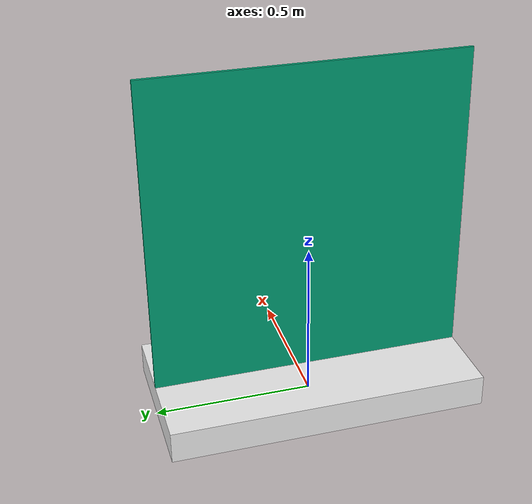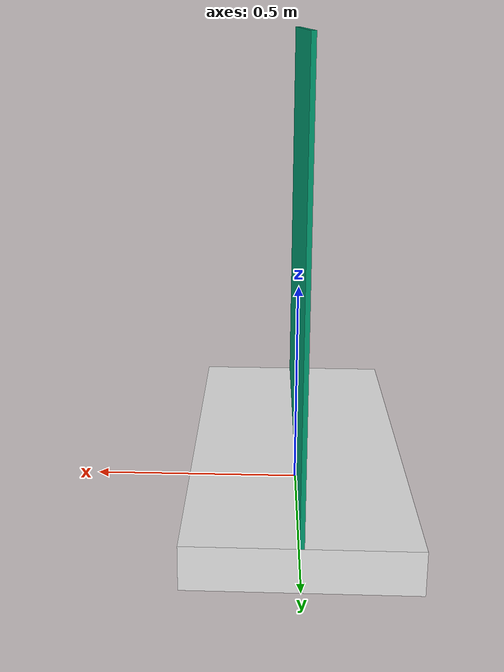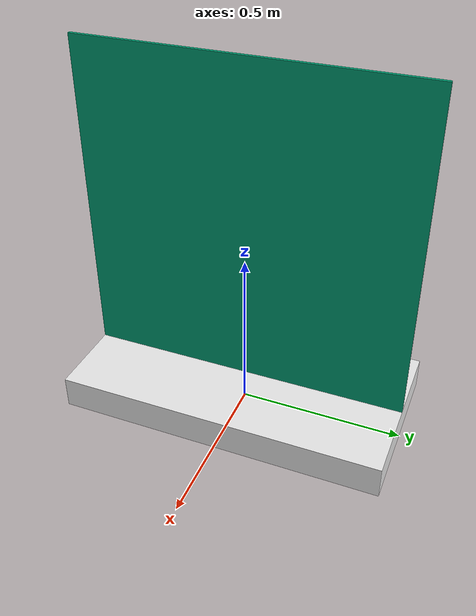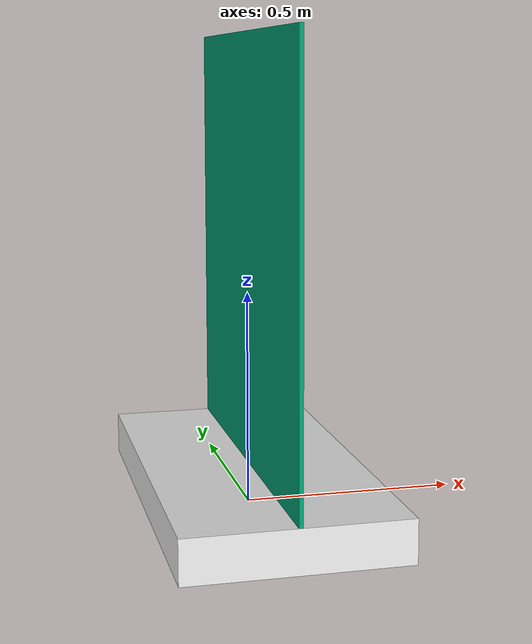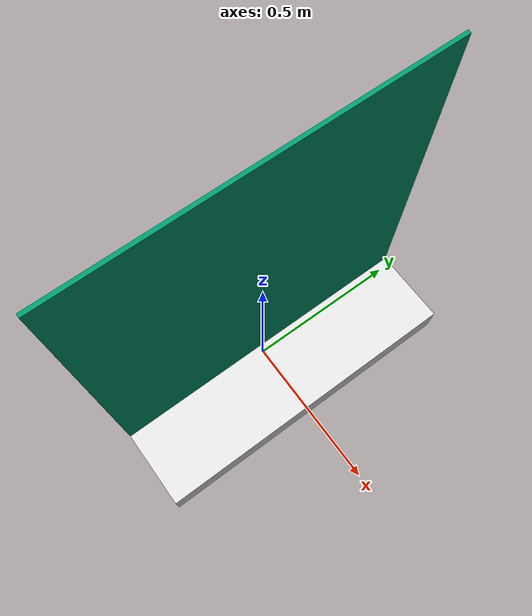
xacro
<?xml version="1.0"?>
<robot name="marker_board" xmlns:xacro="http://www.ros.org/wiki/xacro">

    <macro name="box_inertia" params="m x y z">
      <inertia  ixx="${m*(y*y+z*z)/12}" ixy = "0" ixz = "0"
                iyy="${m*(x*x+z*z)/12}" iyz = "0"
                izz="${m*(x*x+z*z)/12}" />
    </macro>

    <link name="base_link" />

    <joint name="base_joint" type="fixed">
      <origin xyz="0 0 0" rpy="0 0 0" />
      <parent link="base_link" />
      <child link="board_base" />
    </joint>

    <link name="board_base">
      <collision>
        <origin xyz="0 0 0.05" rpy="0 0 0"/>
        <geometry>
          <box size="0.5 1 0.1" />
        </geometry>
      </collision>
      <visual>
        <origin xyz="0 0 0.05" rpy="0 0 0"/>
        <geometry>
          <box size="0.5 1 0.1" />
        </geometry>
      </visual>
      <inertial>
        <origin xyz="0 0 0.05" rpy="0 0 0"/>
        <mass value="1"/>
        <box_inertia m="10" x="0.5" y="1" z="0.1"/>
      </inertial>
    </link>

    <joint name="board_base_joint" type="fixed">
      <origin xyz="0 0 0.1" rpy="0 0 0"/>
      <parent link="board_base"/>
      <child link="board_link"/>
    </joint>

    <link name="board_link">

    <collision>
      <origin xyz="0 0 0" rpy="0 0 -1.57"/>
      <geometry>
        <mesh filename="package://rotors_description/meshes/markers/3_circle_board.dae" scale="0.5 0.5 0.5" />
      </geometry>
    </collision>
    <visual>
      <origin xyz="0 0 0" rpy="0 0 -1.57"/>
      <geometry>
        <mesh filename="package://rotors_description/meshes/markers/3_circle_board.dae" scale="0.5 0.5 0.5" />
      </geometry>
    </visual>

      <inertial>
        <origin xyz="0 0 0" rpy="0 0 -1.57"/>
        <mass value="1"/>
        <box_inertia m="1" x="1.0" y="0.1" z="1.0"/>
      </inertial>
    </link>
    <gazebo reference="board_base">
      <material>Gazebo/White</material>
    </gazebo>

    <gazebo>
      <plugin filename="libmarker_builder.so" name="marker_board">
        <parentFrameId>world</parentFrameId>
        <childFrameId>base_link</childFrameId>
        <linkName>base_link</linkName>
      </plugin>
    </gazebo>

</robot>
